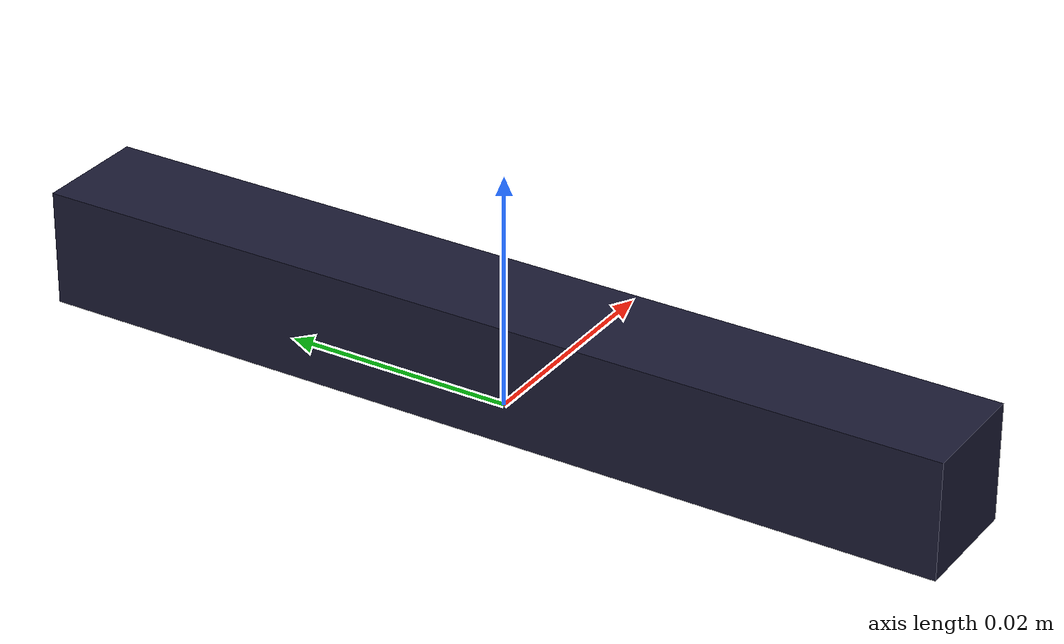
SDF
<?xml version="1.0" ?>
<sdf version="1.6">
  <model name="mathstick8">
    <static>false</static>
    <link name="link">
      <collision name="collision">
        <geometry>
          <mesh>
            <uri>model://mathstick8/meshes/MathStick8.stl</uri>
            <scale>0.001 0.001 0.001</scale>
          </mesh>
        </geometry>
        <surface>
          <friction>
            <ode>
              <mu>100.0</mu> <!-- High coefficient of friction -->
              <mu2>100.0</mu2> <!-- High coefficient of friction -->
            </ode>
          </friction>
        </surface>
      </collision>
      <visual name="visual">
        <geometry>
          <mesh>
            <uri>model://mathstick8/meshes/MathStick8.stl</uri>
            <scale>0.001 0.001 0.001</scale>
          </mesh>
        </geometry>
	<material>
            <ambient>0.55 0.4 0.1 1</ambient>
          <diffuse>0.1 0.1 0.2 1</diffuse>
            <specular>0 0 0 0</specular>
            <emissive>0 0 0 1</emissive>
          </material>
      </visual>
      <inertial>
        <mass>0.04</mass>
        <inertia>
          <ixx>0.0000216666666666667</ixx>
          <ixy>0.0</ixy>
          <ixz>0.0</ixz>
          <iyy>0.000000666666666666667</iyy>
          <iyz>0.0</iyz>
          <izz>0.0000216666666666667</izz>
        </inertia>
      </inertial>
    </link>
  </model>
</sdf>
